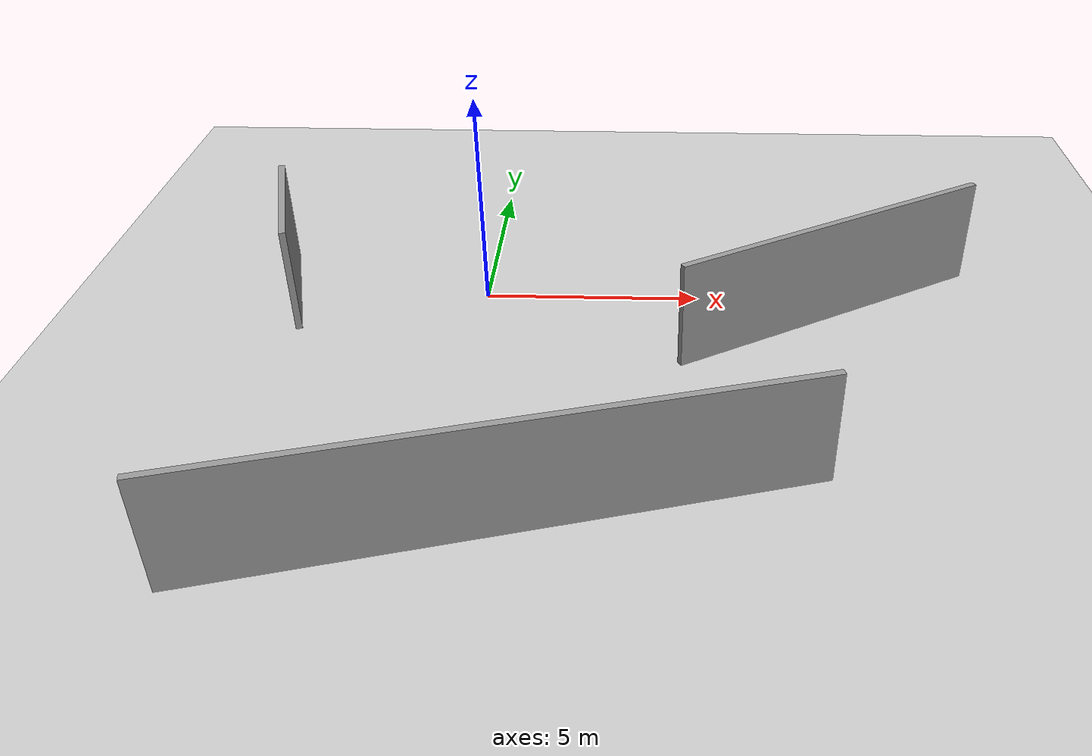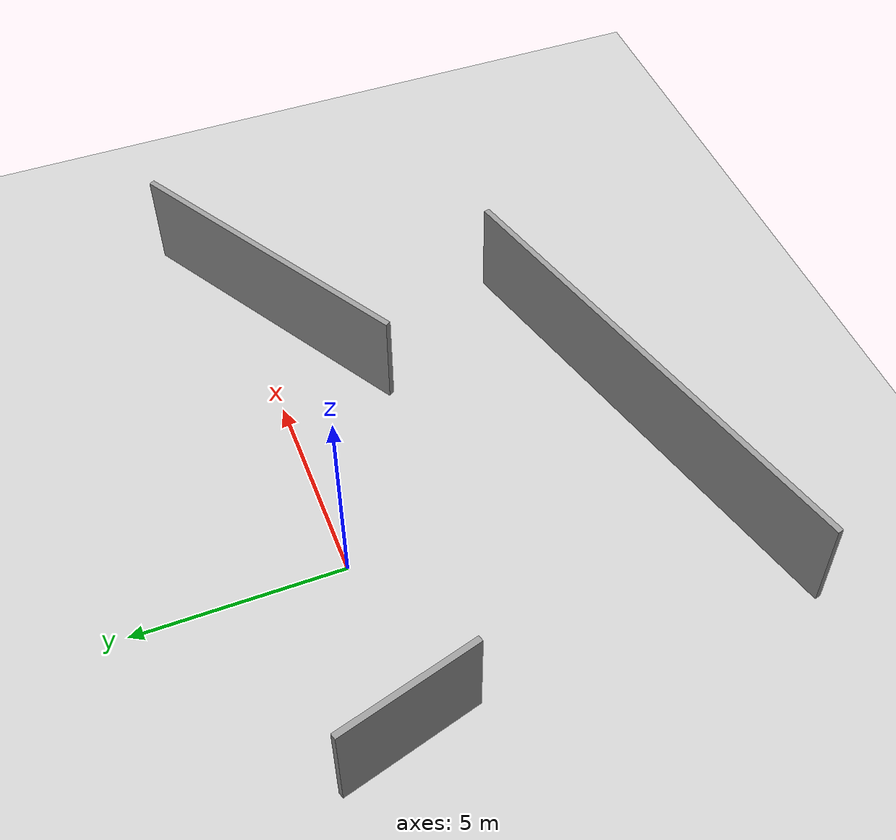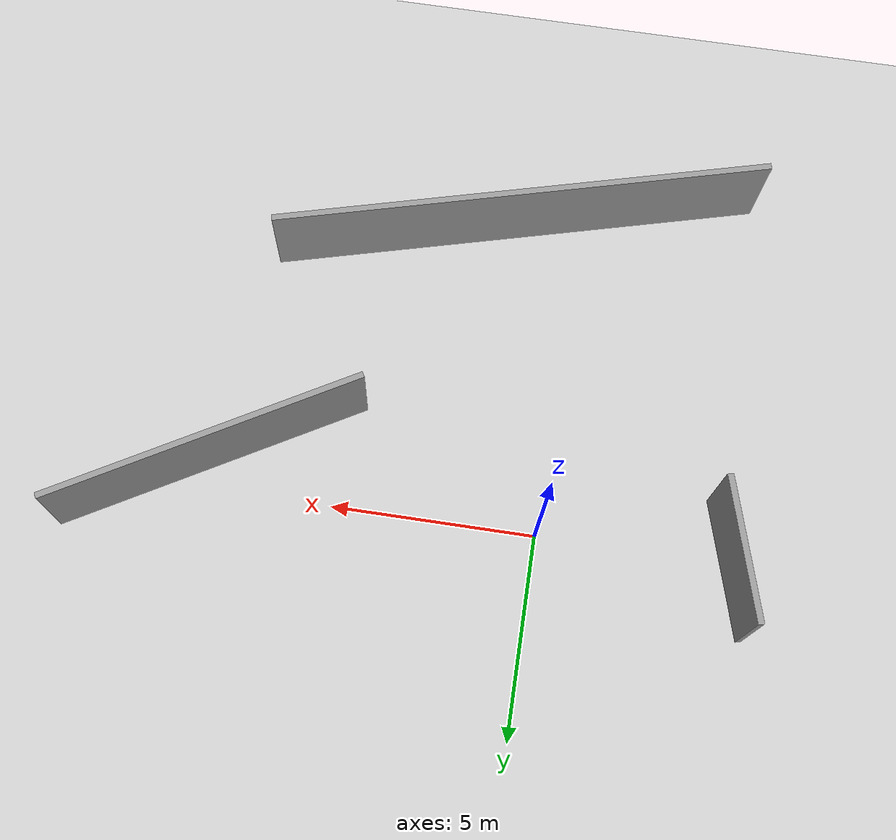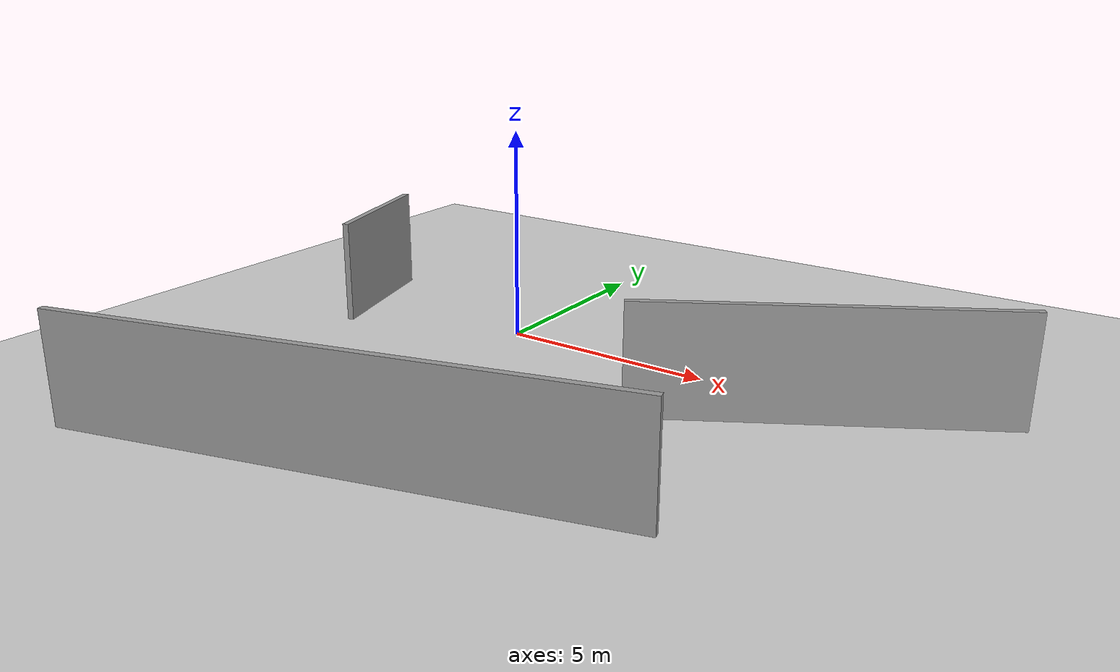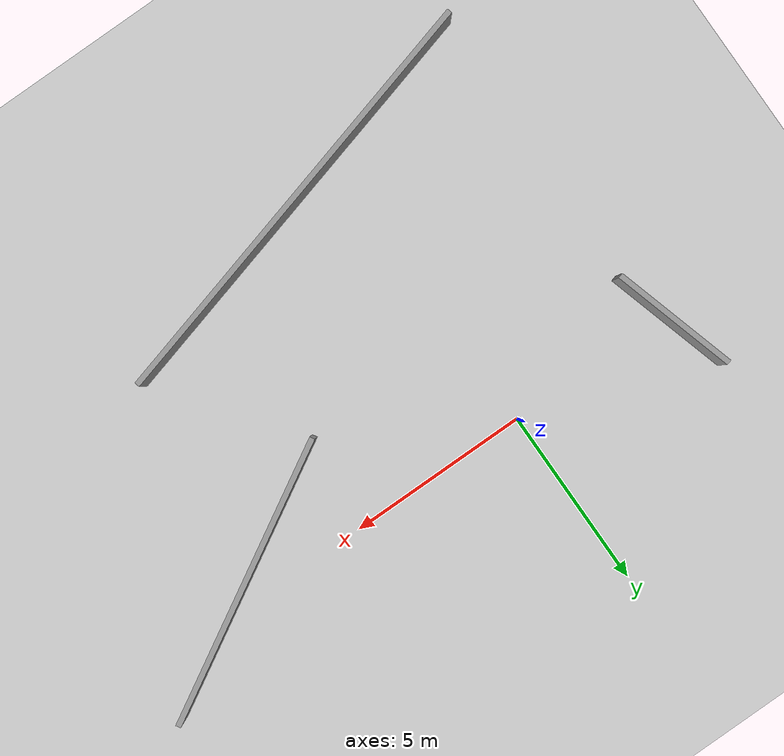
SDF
<sdf version="1.7">
 <world name="default">
  <light name="sun" type="directional">
   <pose>0 0 10 0 -0 0</pose>
   <diffuse>0.8 0.8 0.8 1</diffuse>
   <specular>0.2 0.2 0.2 1</specular>
   <attenuation>
    <range>1000</range>
    <constant>0.9</constant>
    <linear>0.01</linear>
    <quadratic>0.001</quadratic>
   </attenuation>
   <direction>-0.5 0.1 -0.9</direction>
   <spot><inner_angle>0</inner_angle><outer_angle>0</outer_angle><falloff>0</falloff></spot>
  </light>
  <model name="ground_plane">
   <static>1</static>
   <link name="link">
    <collision name="collision">
     <geometry><plane><normal>0 0 1</normal><size>100 100</size></plane></geometry>
     <surface>
      <contact><collide_bitmask>65535</collide_bitmask></contact>
      <friction><ode><mu>100</mu><mu2>50</mu2></ode></friction>
     </surface>
    </collision>
    <visual name="visual">
     <cast_shadows>0</cast_shadows>
     <geometry><plane><normal>0 0 1</normal><size>100 100</size></plane></geometry>
     <material>
      <script><uri>file://media/materials/scripts/gazebo.material</uri><name>Gazebo/Grey</name></script>
     </material>
    </visual>
   </link>
  </model>
  <physics type="ode">
   <max_step_size>0.01</max_step_size>
   <real_time_factor>1</real_time_factor>
   <real_time_update_rate>100</real_time_update_rate>
  </physics>
  <gravity>0 0 -9.8</gravity>
  <magnetic_field>6e-06 2.3e-05 -4.2e-05</magnetic_field>
  <atmosphere type="adiabatic"/>
  <scene><ambient>0.4 0.4 0.4 1</ambient><background>0.7 0.7 0.7 1</background><shadows>1</shadows></scene>
  <spherical_coordinates>
   <surface_model>EARTH_WGS84</surface_model>
   <latitude_deg>0</latitude_deg>
   <longitude_deg>0</longitude_deg>
   <elevation>0</elevation>
   <heading_deg>0</heading_deg>
  </spherical_coordinates>
  <model name="3_walls">
   <pose>3.51898 -4.0545 0 0 -0 0</pose>
   <link name="Wall_0">
    <collision name="Wall_0_Collision">
     <geometry><box><size>3.5 0.15 2.5</size></box></geometry>
     <pose>0 0 1.25 0 -0 0</pose>
    </collision>
    <visual name="Wall_0_Visual">
     <pose>0 0 1.25 0 -0 0</pose>
     <geometry><box><size>3.5 0.15 2.5</size></box></geometry>
     <material>
      <script><uri>file://media/materials/scripts/gazebo.material</uri><name>Gazebo/Grey</name></script>
      <ambient>1 1 1 1</ambient>
     </material>
     <meta><layer>0</layer></meta>
    </visual>
    <pose>-8.14898 4.1995 0 0 -0 -7.5708</pose>
   </link>
   <link name="Wall_2">
    <collision name="Wall_2_Collision">
     <geometry><box><size>12.25 0.15 2.5</size></box></geometry>
     <pose>0 0 1.25 0 -0 0</pose>
    </collision>
    <visual name="Wall_2_Visual">
     <pose>0 0 1.25 0 -0 0</pose>
     <geometry><box><size>12.25 0.15 2.5</size></box></geometry>
     <material>
      <script><uri>file://media/materials/scripts/gazebo.material</uri><name>Gazebo/Grey</name></script>
      <ambient>1 1 1 1</ambient>
     </material>
     <meta><layer>0</layer></meta>
    </visual>
    <pose>-2.05479 -3.80813 0 0 -0 0.261799</pose>
   </link>
   <link name="Wall_4">
    <collision name="Wall_4_Collision">
     <geometry><box><size>8 0.15 2.5</size></box></geometry>
     <pose>0 0 1.25 0 -0 0</pose>
    </collision>
    <visual name="Wall_4_Visual">
     <pose>0 0 1.25 0 -0 0</pose>
     <geometry><box><size>8 0.15 2.5</size></box></geometry>
     <material>
      <script><uri>file://media/materials/scripts/gazebo.material</uri><name>Gazebo/Grey</name></script>
      <ambient>1 1 1 1</ambient>
     </material>
     <meta><layer>0</layer></meta>
    </visual>
    <pose>4.48889 3.40089 0 0 -0 -2.61799</pose>
   </link>
   <static>1</static>
  </model>
 </world>
</sdf>
